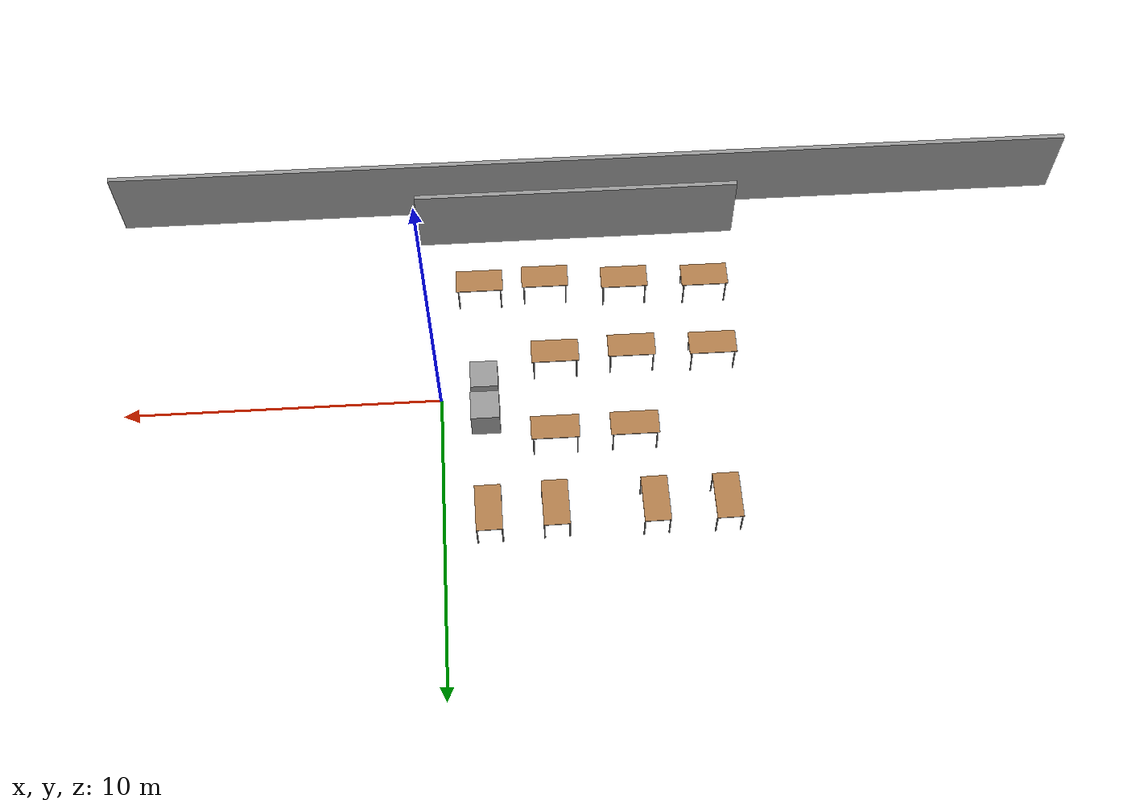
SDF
<sdf version="1.7">
 <model name="turtlebot3_world_V3">
  <link name="link_5">
   <inertial>
    <mass>0.796798</mass>
    <inertia>
     <ixx>0.123086</ixx>
     <ixy>0</ixy>
     <ixz>0</ixz>
     <iyy>0.115781</iyy>
     <iyz>0</iyz>
     <izz>0.106067</izz>
    </inertia>
   </inertial>
   <pose>-1.39789 -0.336219 0.5 0 -0 0</pose>
   <visual name="visual">
    <geometry><box><size>0.862375 0.923961 1</size></box></geometry>
    <material>
     <lighting>1</lighting>
     <script><uri>file://media/materials/scripts/gazebo.material</uri><name>Gazebo/Grey</name></script>
     <shader type="pixel"/>
    </material>
   </visual>
   <collision name="collision">
    <geometry><box><size>0.862375 0.923961 1</size></box></geometry>
    <surface>
     <friction>
      <ode><mu>1</mu><mu2>1</mu2><fdir1>0 0 0</fdir1><slip1>0</slip1><slip2>0</slip2></ode>
      <torsional>
       <coefficient>1</coefficient>
       <patch_radius>0</patch_radius>
       <surface_radius>0</surface_radius>
       <use_patch_radius>1</use_patch_radius>
       <ode><slip>0</slip></ode>
      </torsional>
     </friction>
     <bounce><restitution_coefficient>0</restitution_coefficient><threshold>1e+06</threshold></bounce>
     <contact>
      <collide_without_contact>0</collide_without_contact>
      <collide_without_contact_bitmask>1</collide_without_contact_bitmask>
      <collide_bitmask>1</collide_bitmask>
      <ode>
       <soft_cfm>0</soft_cfm>
       <soft_erp>0.2</soft_erp>
       <kp>1e+13</kp>
       <kd>1</kd>
       <max_vel>0.01</max_vel>
       <min_depth>0</min_depth>
      </ode>
      <bullet>
       <split_impulse>1</split_impulse>
       <split_impulse_penetration_threshold>-0.01</split_impulse_penetration_threshold>
       <soft_cfm>0</soft_cfm>
       <soft_erp>0.2</soft_erp>
       <kp>1e+13</kp>
       <kd>1</kd>
      </bullet>
     </contact>
    </surface>
   </collision>
  </link>
  <link name="link_6">
   <inertial>
    <mass>0.860177</mass>
    <inertia>
     <ixx>0.137972</ixx>
     <ixy>0</ixy>
     <ixz>0</ixz>
     <iyy>0.129036</iyy>
     <iyz>0</iyz>
     <izz>0.123645</izz>
    </inertia>
   </inertial>
   <pose>-1.394 0.77756 0.5 0 -0 0</pose>
   <visual name="visual">
    <geometry><box><size>0.894497 0.961663 1</size></box></geometry>
    <material>
     <lighting>1</lighting>
     <script><uri>file://media/materials/scripts/gazebo.material</uri><name>Gazebo/Grey</name></script>
     <shader type="pixel"/>
    </material>
   </visual>
   <collision name="collision">
    <geometry><box><size>0.894497 0.961663 1</size></box></geometry>
    <surface>
     <friction>
      <ode><mu>1</mu><mu2>1</mu2><fdir1>0 0 0</fdir1><slip1>0</slip1><slip2>0</slip2></ode>
      <torsional>
       <coefficient>1</coefficient>
       <patch_radius>0</patch_radius>
       <surface_radius>0</surface_radius>
       <use_patch_radius>1</use_patch_radius>
       <ode><slip>0</slip></ode>
      </torsional>
     </friction>
     <bounce><restitution_coefficient>0</restitution_coefficient><threshold>1e+06</threshold></bounce>
     <contact>
      <collide_without_contact>0</collide_without_contact>
      <collide_without_contact_bitmask>1</collide_without_contact_bitmask>
      <collide_bitmask>1</collide_bitmask>
      <ode>
       <soft_cfm>0</soft_cfm>
       <soft_erp>0.2</soft_erp>
       <kp>1e+13</kp>
       <kd>1</kd>
       <max_vel>0.01</max_vel>
       <min_depth>0</min_depth>
      </ode>
      <bullet>
       <split_impulse>1</split_impulse>
       <split_impulse_penetration_threshold>-0.01</split_impulse_penetration_threshold>
       <soft_cfm>0</soft_cfm>
       <soft_erp>0.2</soft_erp>
       <kp>1e+13</kp>
       <kd>1</kd>
      </bullet>
     </contact>
    </surface>
   </collision>
  </link>
  <link name="turtlebot3_world_1::The_Project_Hub_Building::Wall_40">
   <pose>-5.18177 -7.52125 0 0 -0 0</pose>
   <visual name="Wall_40_Visual">
    <pose>0 0 1.25 0 -0 0</pose>
    <geometry><box><size>31.5 0.15 2.5</size></box></geometry>
    <material>
     <script><uri>file://media/materials/scripts/gazebo.material</uri><name>Gazebo/Grey</name></script>
     <ambient>1 1 1 1</ambient>
     <shader type="pixel"/>
    </material>
    <meta><layer>0</layer></meta>
   </visual>
   <collision name="Wall_40_Collision">
    <pose>0 0 1.25 0 -0 0</pose>
    <geometry><box><size>31.5 0.15 2.5</size></box></geometry>
    <surface>
     <friction>
      <ode><mu>1</mu><mu2>1</mu2><fdir1>0 0 0</fdir1><slip1>0</slip1><slip2>0</slip2></ode>
      <torsional>
       <coefficient>1</coefficient>
       <patch_radius>0</patch_radius>
       <surface_radius>0</surface_radius>
       <use_patch_radius>1</use_patch_radius>
       <ode><slip>0</slip></ode>
      </torsional>
     </friction>
     <bounce><restitution_coefficient>0</restitution_coefficient><threshold>1e+06</threshold></bounce>
     <contact>
      <collide_without_contact>0</collide_without_contact>
      <collide_without_contact_bitmask>1</collide_without_contact_bitmask>
      <collide_bitmask>1</collide_bitmask>
      <ode>
       <soft_cfm>0</soft_cfm>
       <soft_erp>0.2</soft_erp>
       <kp>1e+13</kp>
       <kd>1</kd>
       <max_vel>0.01</max_vel>
       <min_depth>0</min_depth>
      </ode>
      <bullet>
       <split_impulse>1</split_impulse>
       <split_impulse_penetration_threshold>-0.01</split_impulse_penetration_threshold>
       <soft_cfm>0</soft_cfm>
       <soft_erp>0.2</soft_erp>
       <kp>1e+13</kp>
       <kd>1</kd>
      </bullet>
     </contact>
    </surface>
   </collision>
  </link>
  <link name="turtlebot3_world_1::The_Project_Hub_Building::Wall_5">
   <pose>-4.63922 -6.21777 0 0 -0 0</pose>
   <visual name="Wall_5_Visual">
    <pose>0 0 1.25 0 -0 0</pose>
    <geometry><box><size>10.5 0.15 2.5</size></box></geometry>
    <material>
     <script><uri>file://media/materials/scripts/gazebo.material</uri><name>Gazebo/Grey</name></script>
     <ambient>1 1 1 1</ambient>
     <shader type="pixel"/>
    </material>
    <meta><layer>0</layer></meta>
   </visual>
   <collision name="Wall_5_Collision">
    <pose>0 0 1.25 0 -0 0</pose>
    <geometry><box><size>10.5 0.15 2.5</size></box></geometry>
    <surface>
     <friction>
      <ode><mu>1</mu><mu2>1</mu2><fdir1>0 0 0</fdir1><slip1>0</slip1><slip2>0</slip2></ode>
      <torsional>
       <coefficient>1</coefficient>
       <patch_radius>0</patch_radius>
       <surface_radius>0</surface_radius>
       <use_patch_radius>1</use_patch_radius>
       <ode><slip>0</slip></ode>
      </torsional>
     </friction>
     <bounce><restitution_coefficient>0</restitution_coefficient><threshold>1e+06</threshold></bounce>
     <contact>
      <collide_without_contact>0</collide_without_contact>
      <collide_without_contact_bitmask>1</collide_without_contact_bitmask>
      <collide_bitmask>1</collide_bitmask>
      <ode>
       <soft_cfm>0</soft_cfm>
       <soft_erp>0.2</soft_erp>
       <kp>1e+13</kp>
       <kd>1</kd>
       <max_vel>0.01</max_vel>
       <min_depth>0</min_depth>
      </ode>
      <bullet>
       <split_impulse>1</split_impulse>
       <split_impulse_penetration_threshold>-0.01</split_impulse_penetration_threshold>
       <soft_cfm>0</soft_cfm>
       <soft_erp>0.2</soft_erp>
       <kp>1e+13</kp>
       <kd>1</kd>
      </bullet>
     </contact>
    </surface>
   </collision>
  </link>
  <model name="table">
   <static>1</static>
   <link name="link">
    <collision name="surface">
     <pose>0 0 1 0 -0 0</pose>
     <geometry><box><size>1.5 0.8 0.03</size></box></geometry>
     <surface><friction><ode><mu>0.6</mu><mu2>0.6</mu2></ode></friction></surface>
    </collision>
    <visual name="visual1">
     <pose>0 0 1 0 -0 0</pose>
     <geometry><box><size>1.5 0.8 0.03</size></box></geometry>
     <material>
      <script><uri>file://media/materials/scripts/gazebo.material</uri><name>Gazebo/Wood</name></script>
     </material>
    </visual>
    <collision name="front_left_leg">
     <pose>0.68 0.38 0.5 0 -0 0</pose>
     <geometry><cylinder><radius>0.02</radius><length>1</length></cylinder></geometry>
    </collision>
    <visual name="front_left_leg">
     <pose>0.68 0.38 0.5 0 -0 0</pose>
     <geometry><cylinder><radius>0.02</radius><length>1</length></cylinder></geometry>
     <material>
      <script><uri>file://media/materials/scripts/gazebo.material</uri><name>Gazebo/Grey</name></script>
     </material>
    </visual>
    <collision name="front_right_leg">
     <pose>0.68 -0.38 0.5 0 -0 0</pose>
     <geometry><cylinder><radius>0.02</radius><length>1</length></cylinder></geometry>
    </collision>
    <visual name="front_right_leg">
     <pose>0.68 -0.38 0.5 0 -0 0</pose>
     <geometry><cylinder><radius>0.02</radius><length>1</length></cylinder></geometry>
     <material>
      <script><uri>file://media/materials/scripts/gazebo.material</uri><name>Gazebo/Grey</name></script>
     </material>
    </visual>
    <collision name="back_right_leg">
     <pose>-0.68 -0.38 0.5 0 -0 0</pose>
     <geometry><cylinder><radius>0.02</radius><length>1</length></cylinder></geometry>
    </collision>
    <visual name="back_right_leg">
     <pose>-0.68 -0.38 0.5 0 -0 0</pose>
     <geometry><cylinder><radius>0.02</radius><length>1</length></cylinder></geometry>
     <material>
      <script><uri>file://media/materials/scripts/gazebo.material</uri><name>Gazebo/Grey</name></script>
     </material>
    </visual>
    <collision name="back_left_leg">
     <pose>-0.68 0.38 0.5 0 -0 0</pose>
     <geometry><cylinder><radius>0.02</radius><length>1</length></cylinder></geometry>
    </collision>
    <visual name="back_left_leg">
     <pose>-0.68 0.38 0.5 0 -0 0</pose>
     <geometry><cylinder><radius>0.02</radius><length>1</length></cylinder></geometry>
     <material>
      <script><uri>file://media/materials/scripts/gazebo.material</uri><name>Gazebo/Grey</name></script>
     </material>
    </visual>
   </link>
   <pose>-5.99084 1.68693 0 0 -0 0</pose>
  </model>
  <model name="table_0">
   <static>1</static>
   <link name="link">
    <collision name="surface">
     <pose>0 0 1 0 -0 0</pose>
     <geometry><box><size>1.5 0.8 0.03</size></box></geometry>
     <surface><friction><ode><mu>0.6</mu><mu2>0.6</mu2></ode></friction></surface>
    </collision>
    <visual name="visual1">
     <pose>0 0 1 0 -0 0</pose>
     <geometry><box><size>1.5 0.8 0.03</size></box></geometry>
     <material>
      <script><uri>file://media/materials/scripts/gazebo.material</uri><name>Gazebo/Wood</name></script>
     </material>
    </visual>
    <collision name="front_left_leg">
     <pose>0.68 0.38 0.5 0 -0 0</pose>
     <geometry><cylinder><radius>0.02</radius><length>1</length></cylinder></geometry>
    </collision>
    <visual name="front_left_leg">
     <pose>0.68 0.38 0.5 0 -0 0</pose>
     <geometry><cylinder><radius>0.02</radius><length>1</length></cylinder></geometry>
     <material>
      <script><uri>file://media/materials/scripts/gazebo.material</uri><name>Gazebo/Grey</name></script>
     </material>
    </visual>
    <collision name="front_right_leg">
     <pose>0.68 -0.38 0.5 0 -0 0</pose>
     <geometry><cylinder><radius>0.02</radius><length>1</length></cylinder></geometry>
    </collision>
    <visual name="front_right_leg">
     <pose>0.68 -0.38 0.5 0 -0 0</pose>
     <geometry><cylinder><radius>0.02</radius><length>1</length></cylinder></geometry>
     <material>
      <script><uri>file://media/materials/scripts/gazebo.material</uri><name>Gazebo/Grey</name></script>
     </material>
    </visual>
    <collision name="back_right_leg">
     <pose>-0.68 -0.38 0.5 0 -0 0</pose>
     <geometry><cylinder><radius>0.02</radius><length>1</length></cylinder></geometry>
    </collision>
    <visual name="back_right_leg">
     <pose>-0.68 -0.38 0.5 0 -0 0</pose>
     <geometry><cylinder><radius>0.02</radius><length>1</length></cylinder></geometry>
     <material>
      <script><uri>file://media/materials/scripts/gazebo.material</uri><name>Gazebo/Grey</name></script>
     </material>
    </visual>
    <collision name="back_left_leg">
     <pose>-0.68 0.38 0.5 0 -0 0</pose>
     <geometry><cylinder><radius>0.02</radius><length>1</length></cylinder></geometry>
    </collision>
    <visual name="back_left_leg">
     <pose>-0.68 0.38 0.5 0 -0 0</pose>
     <geometry><cylinder><radius>0.02</radius><length>1</length></cylinder></geometry>
     <material>
      <script><uri>file://media/materials/scripts/gazebo.material</uri><name>Gazebo/Grey</name></script>
     </material>
    </visual>
   </link>
   <pose>-6.42866 4.32925 0 0 -0 1.58428</pose>
  </model>
  <model name="table_0_clone">
   <static>1</static>
   <link name="link">
    <collision name="surface">
     <pose>0 0 1 0 -0 0</pose>
     <geometry><box><size>1.5 0.8 0.03</size></box></geometry>
     <surface><friction><ode><mu>0.6</mu><mu2>0.6</mu2></ode></friction></surface>
    </collision>
    <visual name="visual1">
     <pose>0 0 1 0 -0 0</pose>
     <geometry><box><size>1.5 0.8 0.03</size></box></geometry>
     <material>
      <script><uri>file://media/materials/scripts/gazebo.material</uri><name>Gazebo/Wood</name></script>
     </material>
    </visual>
    <collision name="front_left_leg">
     <pose>0.68 0.38 0.5 0 -0 0</pose>
     <geometry><cylinder><radius>0.02</radius><length>1</length></cylinder></geometry>
    </collision>
    <visual name="front_left_leg">
     <pose>0.68 0.38 0.5 0 -0 0</pose>
     <geometry><cylinder><radius>0.02</radius><length>1</length></cylinder></geometry>
     <material>
      <script><uri>file://media/materials/scripts/gazebo.material</uri><name>Gazebo/Grey</name></script>
     </material>
    </visual>
    <collision name="front_right_leg">
     <pose>0.68 -0.38 0.5 0 -0 0</pose>
     <geometry><cylinder><radius>0.02</radius><length>1</length></cylinder></geometry>
    </collision>
    <visual name="front_right_leg">
     <pose>0.68 -0.38 0.5 0 -0 0</pose>
     <geometry><cylinder><radius>0.02</radius><length>1</length></cylinder></geometry>
     <material>
      <script><uri>file://media/materials/scripts/gazebo.material</uri><name>Gazebo/Grey</name></script>
     </material>
    </visual>
    <collision name="back_right_leg">
     <pose>-0.68 -0.38 0.5 0 -0 0</pose>
     <geometry><cylinder><radius>0.02</radius><length>1</length></cylinder></geometry>
    </collision>
    <visual name="back_right_leg">
     <pose>-0.68 -0.38 0.5 0 -0 0</pose>
     <geometry><cylinder><radius>0.02</radius><length>1</length></cylinder></geometry>
     <material>
      <script><uri>file://media/materials/scripts/gazebo.material</uri><name>Gazebo/Grey</name></script>
     </material>
    </visual>
    <collision name="back_left_leg">
     <pose>-0.68 0.38 0.5 0 -0 0</pose>
     <geometry><cylinder><radius>0.02</radius><length>1</length></cylinder></geometry>
    </collision>
    <visual name="back_left_leg">
     <pose>-0.68 0.38 0.5 0 -0 0</pose>
     <geometry><cylinder><radius>0.02</radius><length>1</length></cylinder></geometry>
     <material>
      <script><uri>file://media/materials/scripts/gazebo.material</uri><name>Gazebo/Grey</name></script>
     </material>
    </visual>
   </link>
   <pose>-8.59674 4.34449 0 0 -0 1.58428</pose>
  </model>
  <model name="table_0_clone_1">
   <static>1</static>
   <link name="link">
    <collision name="surface">
     <pose>0 0 1 0 -0 0</pose>
     <geometry><box><size>1.5 0.8 0.03</size></box></geometry>
     <surface><friction><ode><mu>0.6</mu><mu2>0.6</mu2></ode></friction></surface>
    </collision>
    <visual name="visual1">
     <pose>0 0 1 0 -0 0</pose>
     <geometry><box><size>1.5 0.8 0.03</size></box></geometry>
     <material>
      <script><uri>file://media/materials/scripts/gazebo.material</uri><name>Gazebo/Wood</name></script>
     </material>
    </visual>
    <collision name="front_left_leg">
     <pose>0.68 0.38 0.5 0 -0 0</pose>
     <geometry><cylinder><radius>0.02</radius><length>1</length></cylinder></geometry>
    </collision>
    <visual name="front_left_leg">
     <pose>0.68 0.38 0.5 0 -0 0</pose>
     <geometry><cylinder><radius>0.02</radius><length>1</length></cylinder></geometry>
     <material>
      <script><uri>file://media/materials/scripts/gazebo.material</uri><name>Gazebo/Grey</name></script>
     </material>
    </visual>
    <collision name="front_right_leg">
     <pose>0.68 -0.38 0.5 0 -0 0</pose>
     <geometry><cylinder><radius>0.02</radius><length>1</length></cylinder></geometry>
    </collision>
    <visual name="front_right_leg">
     <pose>0.68 -0.38 0.5 0 -0 0</pose>
     <geometry><cylinder><radius>0.02</radius><length>1</length></cylinder></geometry>
     <material>
      <script><uri>file://media/materials/scripts/gazebo.material</uri><name>Gazebo/Grey</name></script>
     </material>
    </visual>
    <collision name="back_right_leg">
     <pose>-0.68 -0.38 0.5 0 -0 0</pose>
     <geometry><cylinder><radius>0.02</radius><length>1</length></cylinder></geometry>
    </collision>
    <visual name="back_right_leg">
     <pose>-0.68 -0.38 0.5 0 -0 0</pose>
     <geometry><cylinder><radius>0.02</radius><length>1</length></cylinder></geometry>
     <material>
      <script><uri>file://media/materials/scripts/gazebo.material</uri><name>Gazebo/Grey</name></script>
     </material>
    </visual>
    <collision name="back_left_leg">
     <pose>-0.68 0.38 0.5 0 -0 0</pose>
     <geometry><cylinder><radius>0.02</radius><length>1</length></cylinder></geometry>
    </collision>
    <visual name="back_left_leg">
     <pose>-0.68 0.38 0.5 0 -0 0</pose>
     <geometry><cylinder><radius>0.02</radius><length>1</length></cylinder></geometry>
     <material>
      <script><uri>file://media/materials/scripts/gazebo.material</uri><name>Gazebo/Grey</name></script>
     </material>
    </visual>
   </link>
   <pose>-3.41771 4.28245 0 0 -0 1.58428</pose>
  </model>
  <model name="table_0_clone_2">
   <static>1</static>
   <link name="link">
    <collision name="surface">
     <pose>0 0 1 0 -0 0</pose>
     <geometry><box><size>1.5 0.8 0.03</size></box></geometry>
     <surface><friction><ode><mu>0.6</mu><mu2>0.6</mu2></ode></friction></surface>
    </collision>
    <visual name="visual1">
     <pose>0 0 1 0 -0 0</pose>
     <geometry><box><size>1.5 0.8 0.03</size></box></geometry>
     <material>
      <script><uri>file://media/materials/scripts/gazebo.material</uri><name>Gazebo/Wood</name></script>
     </material>
    </visual>
    <collision name="front_left_leg">
     <pose>0.68 0.38 0.5 0 -0 0</pose>
     <geometry><cylinder><radius>0.02</radius><length>1</length></cylinder></geometry>
    </collision>
    <visual name="front_left_leg">
     <pose>0.68 0.38 0.5 0 -0 0</pose>
     <geometry><cylinder><radius>0.02</radius><length>1</length></cylinder></geometry>
     <material>
      <script><uri>file://media/materials/scripts/gazebo.material</uri><name>Gazebo/Grey</name></script>
     </material>
    </visual>
    <collision name="front_right_leg">
     <pose>0.68 -0.38 0.5 0 -0 0</pose>
     <geometry><cylinder><radius>0.02</radius><length>1</length></cylinder></geometry>
    </collision>
    <visual name="front_right_leg">
     <pose>0.68 -0.38 0.5 0 -0 0</pose>
     <geometry><cylinder><radius>0.02</radius><length>1</length></cylinder></geometry>
     <material>
      <script><uri>file://media/materials/scripts/gazebo.material</uri><name>Gazebo/Grey</name></script>
     </material>
    </visual>
    <collision name="back_right_leg">
     <pose>-0.68 -0.38 0.5 0 -0 0</pose>
     <geometry><cylinder><radius>0.02</radius><length>1</length></cylinder></geometry>
    </collision>
    <visual name="back_right_leg">
     <pose>-0.68 -0.38 0.5 0 -0 0</pose>
     <geometry><cylinder><radius>0.02</radius><length>1</length></cylinder></geometry>
     <material>
      <script><uri>file://media/materials/scripts/gazebo.material</uri><name>Gazebo/Grey</name></script>
     </material>
    </visual>
    <collision name="back_left_leg">
     <pose>-0.68 0.38 0.5 0 -0 0</pose>
     <geometry><cylinder><radius>0.02</radius><length>1</length></cylinder></geometry>
    </collision>
    <visual name="back_left_leg">
     <pose>-0.68 0.38 0.5 0 -0 0</pose>
     <geometry><cylinder><radius>0.02</radius><length>1</length></cylinder></geometry>
     <material>
      <script><uri>file://media/materials/scripts/gazebo.material</uri><name>Gazebo/Grey</name></script>
     </material>
    </visual>
   </link>
   <pose>-1.39834 4.34393 0 0 -0 1.58428</pose>
  </model>
  <model name="table_clone">
   <static>1</static>
   <link name="link">
    <collision name="surface">
     <pose>0 0 1 0 -0 0</pose>
     <geometry><box><size>1.5 0.8 0.03</size></box></geometry>
     <surface><friction><ode><mu>0.6</mu><mu2>0.6</mu2></ode></friction></surface>
    </collision>
    <visual name="visual1">
     <pose>0 0 1 0 -0 0</pose>
     <geometry><box><size>1.5 0.8 0.03</size></box></geometry>
     <material>
      <script><uri>file://media/materials/scripts/gazebo.material</uri><name>Gazebo/Wood</name></script>
     </material>
    </visual>
    <collision name="front_left_leg">
     <pose>0.68 0.38 0.5 0 -0 0</pose>
     <geometry><cylinder><radius>0.02</radius><length>1</length></cylinder></geometry>
    </collision>
    <visual name="front_left_leg">
     <pose>0.68 0.38 0.5 0 -0 0</pose>
     <geometry><cylinder><radius>0.02</radius><length>1</length></cylinder></geometry>
     <material>
      <script><uri>file://media/materials/scripts/gazebo.material</uri><name>Gazebo/Grey</name></script>
     </material>
    </visual>
    <collision name="front_right_leg">
     <pose>0.68 -0.38 0.5 0 -0 0</pose>
     <geometry><cylinder><radius>0.02</radius><length>1</length></cylinder></geometry>
    </collision>
    <visual name="front_right_leg">
     <pose>0.68 -0.38 0.5 0 -0 0</pose>
     <geometry><cylinder><radius>0.02</radius><length>1</length></cylinder></geometry>
     <material>
      <script><uri>file://media/materials/scripts/gazebo.material</uri><name>Gazebo/Grey</name></script>
     </material>
    </visual>
    <collision name="back_right_leg">
     <pose>-0.68 -0.38 0.5 0 -0 0</pose>
     <geometry><cylinder><radius>0.02</radius><length>1</length></cylinder></geometry>
    </collision>
    <visual name="back_right_leg">
     <pose>-0.68 -0.38 0.5 0 -0 0</pose>
     <geometry><cylinder><radius>0.02</radius><length>1</length></cylinder></geometry>
     <material>
      <script><uri>file://media/materials/scripts/gazebo.material</uri><name>Gazebo/Grey</name></script>
     </material>
    </visual>
    <collision name="back_left_leg">
     <pose>-0.68 0.38 0.5 0 -0 0</pose>
     <geometry><cylinder><radius>0.02</radius><length>1</length></cylinder></geometry>
    </collision>
    <visual name="back_left_leg">
     <pose>-0.68 0.38 0.5 0 -0 0</pose>
     <geometry><cylinder><radius>0.02</radius><length>1</length></cylinder></geometry>
     <material>
      <script><uri>file://media/materials/scripts/gazebo.material</uri><name>Gazebo/Grey</name></script>
     </material>
    </visual>
   </link>
   <pose>-3.53556 1.69688 0 0 -0 0</pose>
  </model>
  <model name="table_clone_0">
   <static>1</static>
   <link name="link">
    <collision name="surface">
     <pose>0 0 1 0 -0 0</pose>
     <geometry><box><size>1.5 0.8 0.03</size></box></geometry>
     <surface><friction><ode><mu>0.6</mu><mu2>0.6</mu2></ode></friction></surface>
    </collision>
    <visual name="visual1">
     <pose>0 0 1 0 -0 0</pose>
     <geometry><box><size>1.5 0.8 0.03</size></box></geometry>
     <material>
      <script><uri>file://media/materials/scripts/gazebo.material</uri><name>Gazebo/Wood</name></script>
     </material>
    </visual>
    <collision name="front_left_leg">
     <pose>0.68 0.38 0.5 0 -0 0</pose>
     <geometry><cylinder><radius>0.02</radius><length>1</length></cylinder></geometry>
    </collision>
    <visual name="front_left_leg">
     <pose>0.68 0.38 0.5 0 -0 0</pose>
     <geometry><cylinder><radius>0.02</radius><length>1</length></cylinder></geometry>
     <material>
      <script><uri>file://media/materials/scripts/gazebo.material</uri><name>Gazebo/Grey</name></script>
     </material>
    </visual>
    <collision name="front_right_leg">
     <pose>0.68 -0.38 0.5 0 -0 0</pose>
     <geometry><cylinder><radius>0.02</radius><length>1</length></cylinder></geometry>
    </collision>
    <visual name="front_right_leg">
     <pose>0.68 -0.38 0.5 0 -0 0</pose>
     <geometry><cylinder><radius>0.02</radius><length>1</length></cylinder></geometry>
     <material>
      <script><uri>file://media/materials/scripts/gazebo.material</uri><name>Gazebo/Grey</name></script>
     </material>
    </visual>
    <collision name="back_right_leg">
     <pose>-0.68 -0.38 0.5 0 -0 0</pose>
     <geometry><cylinder><radius>0.02</radius><length>1</length></cylinder></geometry>
    </collision>
    <visual name="back_right_leg">
     <pose>-0.68 -0.38 0.5 0 -0 0</pose>
     <geometry><cylinder><radius>0.02</radius><length>1</length></cylinder></geometry>
     <material>
      <script><uri>file://media/materials/scripts/gazebo.material</uri><name>Gazebo/Grey</name></script>
     </material>
    </visual>
    <collision name="back_left_leg">
     <pose>-0.68 0.38 0.5 0 -0 0</pose>
     <geometry><cylinder><radius>0.02</radius><length>1</length></cylinder></geometry>
    </collision>
    <visual name="back_left_leg">
     <pose>-0.68 0.38 0.5 0 -0 0</pose>
     <geometry><cylinder><radius>0.02</radius><length>1</length></cylinder></geometry>
     <material>
      <script><uri>file://media/materials/scripts/gazebo.material</uri><name>Gazebo/Grey</name></script>
     </material>
    </visual>
   </link>
   <pose>-3.66604 -1.05699 0 0 -0 0</pose>
  </model>
  <model name="table_clone_1">
   <static>1</static>
   <link name="link">
    <collision name="surface">
     <pose>0 0 1 0 -0 0</pose>
     <geometry><box><size>1.5 0.8 0.03</size></box></geometry>
     <surface><friction><ode><mu>0.6</mu><mu2>0.6</mu2></ode></friction></surface>
    </collision>
    <visual name="visual1">
     <pose>0 0 1 0 -0 0</pose>
     <geometry><box><size>1.5 0.8 0.03</size></box></geometry>
     <material>
      <script><uri>file://media/materials/scripts/gazebo.material</uri><name>Gazebo/Wood</name></script>
     </material>
    </visual>
    <collision name="front_left_leg">
     <pose>0.68 0.38 0.5 0 -0 0</pose>
     <geometry><cylinder><radius>0.02</radius><length>1</length></cylinder></geometry>
    </collision>
    <visual name="front_left_leg">
     <pose>0.68 0.38 0.5 0 -0 0</pose>
     <geometry><cylinder><radius>0.02</radius><length>1</length></cylinder></geometry>
     <material>
      <script><uri>file://media/materials/scripts/gazebo.material</uri><name>Gazebo/Grey</name></script>
     </material>
    </visual>
    <collision name="front_right_leg">
     <pose>0.68 -0.38 0.5 0 -0 0</pose>
     <geometry><cylinder><radius>0.02</radius><length>1</length></cylinder></geometry>
    </collision>
    <visual name="front_right_leg">
     <pose>0.68 -0.38 0.5 0 -0 0</pose>
     <geometry><cylinder><radius>0.02</radius><length>1</length></cylinder></geometry>
     <material>
      <script><uri>file://media/materials/scripts/gazebo.material</uri><name>Gazebo/Grey</name></script>
     </material>
    </visual>
    <collision name="back_right_leg">
     <pose>-0.68 -0.38 0.5 0 -0 0</pose>
     <geometry><cylinder><radius>0.02</radius><length>1</length></cylinder></geometry>
    </collision>
    <visual name="back_right_leg">
     <pose>-0.68 -0.38 0.5 0 -0 0</pose>
     <geometry><cylinder><radius>0.02</radius><length>1</length></cylinder></geometry>
     <material>
      <script><uri>file://media/materials/scripts/gazebo.material</uri><name>Gazebo/Grey</name></script>
     </material>
    </visual>
    <collision name="back_left_leg">
     <pose>-0.68 0.38 0.5 0 -0 0</pose>
     <geometry><cylinder><radius>0.02</radius><length>1</length></cylinder></geometry>
    </collision>
    <visual name="back_left_leg">
     <pose>-0.68 0.38 0.5 0 -0 0</pose>
     <geometry><cylinder><radius>0.02</radius><length>1</length></cylinder></geometry>
     <material>
      <script><uri>file://media/materials/scripts/gazebo.material</uri><name>Gazebo/Grey</name></script>
     </material>
    </visual>
   </link>
   <pose>-6.10064 -1.14095 0 0 -0 0</pose>
  </model>
  <model name="table_clone_13">
   <static>1</static>
   <link name="link">
    <collision name="surface">
     <pose>0 0 1 0 -0 0</pose>
     <geometry><box><size>1.5 0.8 0.03</size></box></geometry>
     <surface><friction><ode><mu>0.6</mu><mu2>0.6</mu2></ode></friction></surface>
    </collision>
    <visual name="visual1">
     <pose>0 0 1 0 -0 0</pose>
     <geometry><box><size>1.5 0.8 0.03</size></box></geometry>
     <material>
      <script><uri>file://media/materials/scripts/gazebo.material</uri><name>Gazebo/Wood</name></script>
     </material>
    </visual>
    <collision name="front_left_leg">
     <pose>0.68 0.38 0.5 0 -0 0</pose>
     <geometry><cylinder><radius>0.02</radius><length>1</length></cylinder></geometry>
    </collision>
    <visual name="front_left_leg">
     <pose>0.68 0.38 0.5 0 -0 0</pose>
     <geometry><cylinder><radius>0.02</radius><length>1</length></cylinder></geometry>
     <material>
      <script><uri>file://media/materials/scripts/gazebo.material</uri><name>Gazebo/Grey</name></script>
     </material>
    </visual>
    <collision name="front_right_leg">
     <pose>0.68 -0.38 0.5 0 -0 0</pose>
     <geometry><cylinder><radius>0.02</radius><length>1</length></cylinder></geometry>
    </collision>
    <visual name="front_right_leg">
     <pose>0.68 -0.38 0.5 0 -0 0</pose>
     <geometry><cylinder><radius>0.02</radius><length>1</length></cylinder></geometry>
     <material>
      <script><uri>file://media/materials/scripts/gazebo.material</uri><name>Gazebo/Grey</name></script>
     </material>
    </visual>
    <collision name="back_right_leg">
     <pose>-0.68 -0.38 0.5 0 -0 0</pose>
     <geometry><cylinder><radius>0.02</radius><length>1</length></cylinder></geometry>
    </collision>
    <visual name="back_right_leg">
     <pose>-0.68 -0.38 0.5 0 -0 0</pose>
     <geometry><cylinder><radius>0.02</radius><length>1</length></cylinder></geometry>
     <material>
      <script><uri>file://media/materials/scripts/gazebo.material</uri><name>Gazebo/Grey</name></script>
     </material>
    </visual>
    <collision name="back_left_leg">
     <pose>-0.68 0.38 0.5 0 -0 0</pose>
     <geometry><cylinder><radius>0.02</radius><length>1</length></cylinder></geometry>
    </collision>
    <visual name="back_left_leg">
     <pose>-0.68 0.38 0.5 0 -0 0</pose>
     <geometry><cylinder><radius>0.02</radius><length>1</length></cylinder></geometry>
     <material>
      <script><uri>file://media/materials/scripts/gazebo.material</uri><name>Gazebo/Grey</name></script>
     </material>
    </visual>
   </link>
   <pose>-8.6632 -3.70499 0 0 -0 0</pose>
  </model>
  <model name="table_clone_15">
   <static>1</static>
   <link name="link">
    <collision name="surface">
     <pose>0 0 1 0 -0 0</pose>
     <geometry><box><size>1.5 0.8 0.03</size></box></geometry>
     <surface><friction><ode><mu>0.6</mu><mu2>0.6</mu2></ode></friction></surface>
    </collision>
    <visual name="visual1">
     <pose>0 0 1 0 -0 0</pose>
     <geometry><box><size>1.5 0.8 0.03</size></box></geometry>
     <material>
      <script><uri>file://media/materials/scripts/gazebo.material</uri><name>Gazebo/Wood</name></script>
     </material>
    </visual>
    <collision name="front_left_leg">
     <pose>0.68 0.38 0.5 0 -0 0</pose>
     <geometry><cylinder><radius>0.02</radius><length>1</length></cylinder></geometry>
    </collision>
    <visual name="front_left_leg">
     <pose>0.68 0.38 0.5 0 -0 0</pose>
     <geometry><cylinder><radius>0.02</radius><length>1</length></cylinder></geometry>
     <material>
      <script><uri>file://media/materials/scripts/gazebo.material</uri><name>Gazebo/Grey</name></script>
     </material>
    </visual>
    <collision name="front_right_leg">
     <pose>0.68 -0.38 0.5 0 -0 0</pose>
     <geometry><cylinder><radius>0.02</radius><length>1</length></cylinder></geometry>
    </collision>
    <visual name="front_right_leg">
     <pose>0.68 -0.38 0.5 0 -0 0</pose>
     <geometry><cylinder><radius>0.02</radius><length>1</length></cylinder></geometry>
     <material>
      <script><uri>file://media/materials/scripts/gazebo.material</uri><name>Gazebo/Grey</name></script>
     </material>
    </visual>
    <collision name="back_right_leg">
     <pose>-0.68 -0.38 0.5 0 -0 0</pose>
     <geometry><cylinder><radius>0.02</radius><length>1</length></cylinder></geometry>
    </collision>
    <visual name="back_right_leg">
     <pose>-0.68 -0.38 0.5 0 -0 0</pose>
     <geometry><cylinder><radius>0.02</radius><length>1</length></cylinder></geometry>
     <material>
      <script><uri>file://media/materials/scripts/gazebo.material</uri><name>Gazebo/Grey</name></script>
     </material>
    </visual>
    <collision name="back_left_leg">
     <pose>-0.68 0.38 0.5 0 -0 0</pose>
     <geometry><cylinder><radius>0.02</radius><length>1</length></cylinder></geometry>
    </collision>
    <visual name="back_left_leg">
     <pose>-0.68 0.38 0.5 0 -0 0</pose>
     <geometry><cylinder><radius>0.02</radius><length>1</length></cylinder></geometry>
     <material>
      <script><uri>file://media/materials/scripts/gazebo.material</uri><name>Gazebo/Grey</name></script>
     </material>
    </visual>
   </link>
   <pose>-8.67818 -1.0906 0 0 -0 0</pose>
  </model>
  <model name="table_clone_2">
   <static>1</static>
   <link name="link">
    <collision name="surface">
     <pose>0 0 1 0 -0 0</pose>
     <geometry><box><size>1.5 0.8 0.03</size></box></geometry>
     <surface><friction><ode><mu>0.6</mu><mu2>0.6</mu2></ode></friction></surface>
    </collision>
    <visual name="visual1">
     <pose>0 0 1 0 -0 0</pose>
     <geometry><box><size>1.5 0.8 0.03</size></box></geometry>
     <material>
      <script><uri>file://media/materials/scripts/gazebo.material</uri><name>Gazebo/Wood</name></script>
     </material>
    </visual>
    <collision name="front_left_leg">
     <pose>0.68 0.38 0.5 0 -0 0</pose>
     <geometry><cylinder><radius>0.02</radius><length>1</length></cylinder></geometry>
    </collision>
    <visual name="front_left_leg">
     <pose>0.68 0.38 0.5 0 -0 0</pose>
     <geometry><cylinder><radius>0.02</radius><length>1</length></cylinder></geometry>
     <material>
      <script><uri>file://media/materials/scripts/gazebo.material</uri><name>Gazebo/Grey</name></script>
     </material>
    </visual>
    <collision name="front_right_leg">
     <pose>0.68 -0.38 0.5 0 -0 0</pose>
     <geometry><cylinder><radius>0.02</radius><length>1</length></cylinder></geometry>
    </collision>
    <visual name="front_right_leg">
     <pose>0.68 -0.38 0.5 0 -0 0</pose>
     <geometry><cylinder><radius>0.02</radius><length>1</length></cylinder></geometry>
     <material>
      <script><uri>file://media/materials/scripts/gazebo.material</uri><name>Gazebo/Grey</name></script>
     </material>
    </visual>
    <collision name="back_right_leg">
     <pose>-0.68 -0.38 0.5 0 -0 0</pose>
     <geometry><cylinder><radius>0.02</radius><length>1</length></cylinder></geometry>
    </collision>
    <visual name="back_right_leg">
     <pose>-0.68 -0.38 0.5 0 -0 0</pose>
     <geometry><cylinder><radius>0.02</radius><length>1</length></cylinder></geometry>
     <material>
      <script><uri>file://media/materials/scripts/gazebo.material</uri><name>Gazebo/Grey</name></script>
     </material>
    </visual>
    <collision name="back_left_leg">
     <pose>-0.68 0.38 0.5 0 -0 0</pose>
     <geometry><cylinder><radius>0.02</radius><length>1</length></cylinder></geometry>
    </collision>
    <visual name="back_left_leg">
     <pose>-0.68 0.38 0.5 0 -0 0</pose>
     <geometry><cylinder><radius>0.02</radius><length>1</length></cylinder></geometry>
     <material>
      <script><uri>file://media/materials/scripts/gazebo.material</uri><name>Gazebo/Grey</name></script>
     </material>
    </visual>
   </link>
   <pose>-6.04917 -3.77002 0 0 -0 0</pose>
  </model>
  <model name="table_clone_3">
   <static>1</static>
   <link name="link">
    <collision name="surface">
     <pose>0 0 1 0 -0 0</pose>
     <geometry><box><size>1.5 0.8 0.03</size></box></geometry>
     <surface><friction><ode><mu>0.6</mu><mu2>0.6</mu2></ode></friction></surface>
    </collision>
    <visual name="visual1">
     <pose>0 0 1 0 -0 0</pose>
     <geometry><box><size>1.5 0.8 0.03</size></box></geometry>
     <material>
      <script><uri>file://media/materials/scripts/gazebo.material</uri><name>Gazebo/Wood</name></script>
     </material>
    </visual>
    <collision name="front_left_leg">
     <pose>0.68 0.38 0.5 0 -0 0</pose>
     <geometry><cylinder><radius>0.02</radius><length>1</length></cylinder></geometry>
    </collision>
    <visual name="front_left_leg">
     <pose>0.68 0.38 0.5 0 -0 0</pose>
     <geometry><cylinder><radius>0.02</radius><length>1</length></cylinder></geometry>
     <material>
      <script><uri>file://media/materials/scripts/gazebo.material</uri><name>Gazebo/Grey</name></script>
     </material>
    </visual>
    <collision name="front_right_leg">
     <pose>0.68 -0.38 0.5 0 -0 0</pose>
     <geometry><cylinder><radius>0.02</radius><length>1</length></cylinder></geometry>
    </collision>
    <visual name="front_right_leg">
     <pose>0.68 -0.38 0.5 0 -0 0</pose>
     <geometry><cylinder><radius>0.02</radius><length>1</length></cylinder></geometry>
     <material>
      <script><uri>file://media/materials/scripts/gazebo.material</uri><name>Gazebo/Grey</name></script>
     </material>
    </visual>
    <collision name="back_right_leg">
     <pose>-0.68 -0.38 0.5 0 -0 0</pose>
     <geometry><cylinder><radius>0.02</radius><length>1</length></cylinder></geometry>
    </collision>
    <visual name="back_right_leg">
     <pose>-0.68 -0.38 0.5 0 -0 0</pose>
     <geometry><cylinder><radius>0.02</radius><length>1</length></cylinder></geometry>
     <material>
      <script><uri>file://media/materials/scripts/gazebo.material</uri><name>Gazebo/Grey</name></script>
     </material>
    </visual>
    <collision name="back_left_leg">
     <pose>-0.68 0.38 0.5 0 -0 0</pose>
     <geometry><cylinder><radius>0.02</radius><length>1</length></cylinder></geometry>
    </collision>
    <visual name="back_left_leg">
     <pose>-0.68 0.38 0.5 0 -0 0</pose>
     <geometry><cylinder><radius>0.02</radius><length>1</length></cylinder></geometry>
     <material>
      <script><uri>file://media/materials/scripts/gazebo.material</uri><name>Gazebo/Grey</name></script>
     </material>
    </visual>
   </link>
   <pose>-3.47809 -3.92853 0 0 -0 0</pose>
  </model>
  <model name="table_clone_4">
   <static>1</static>
   <link name="link">
    <collision name="surface">
     <pose>0 0 1 0 -0 0</pose>
     <geometry><box><size>1.5 0.8 0.03</size></box></geometry>
     <surface><friction><ode><mu>0.6</mu><mu2>0.6</mu2></ode></friction></surface>
    </collision>
    <visual name="visual1">
     <pose>0 0 1 0 -0 0</pose>
     <geometry><box><size>1.5 0.8 0.03</size></box></geometry>
     <material>
      <script><uri>file://media/materials/scripts/gazebo.material</uri><name>Gazebo/Wood</name></script>
     </material>
    </visual>
    <collision name="front_left_leg">
     <pose>0.68 0.38 0.5 0 -0 0</pose>
     <geometry><cylinder><radius>0.02</radius><length>1</length></cylinder></geometry>
    </collision>
    <visual name="front_left_leg">
     <pose>0.68 0.38 0.5 0 -0 0</pose>
     <geometry><cylinder><radius>0.02</radius><length>1</length></cylinder></geometry>
     <material>
      <script><uri>file://media/materials/scripts/gazebo.material</uri><name>Gazebo/Grey</name></script>
     </material>
    </visual>
    <collision name="front_right_leg">
     <pose>0.68 -0.38 0.5 0 -0 0</pose>
     <geometry><cylinder><radius>0.02</radius><length>1</length></cylinder></geometry>
    </collision>
    <visual name="front_right_leg">
     <pose>0.68 -0.38 0.5 0 -0 0</pose>
     <geometry><cylinder><radius>0.02</radius><length>1</length></cylinder></geometry>
     <material>
      <script><uri>file://media/materials/scripts/gazebo.material</uri><name>Gazebo/Grey</name></script>
     </material>
    </visual>
    <collision name="back_right_leg">
     <pose>-0.68 -0.38 0.5 0 -0 0</pose>
     <geometry><cylinder><radius>0.02</radius><length>1</length></cylinder></geometry>
    </collision>
    <visual name="back_right_leg">
     <pose>-0.68 -0.38 0.5 0 -0 0</pose>
     <geometry><cylinder><radius>0.02</radius><length>1</length></cylinder></geometry>
     <material>
      <script><uri>file://media/materials/scripts/gazebo.material</uri><name>Gazebo/Grey</name></script>
     </material>
    </visual>
    <collision name="back_left_leg">
     <pose>-0.68 0.38 0.5 0 -0 0</pose>
     <geometry><cylinder><radius>0.02</radius><length>1</length></cylinder></geometry>
    </collision>
    <visual name="back_left_leg">
     <pose>-0.68 0.38 0.5 0 -0 0</pose>
     <geometry><cylinder><radius>0.02</radius><length>1</length></cylinder></geometry>
     <material>
      <script><uri>file://media/materials/scripts/gazebo.material</uri><name>Gazebo/Grey</name></script>
     </material>
    </visual>
   </link>
   <pose>-1.35579 -3.86435 0 0 -0 0</pose>
  </model>
  <static>1</static>
 </model>
</sdf>
